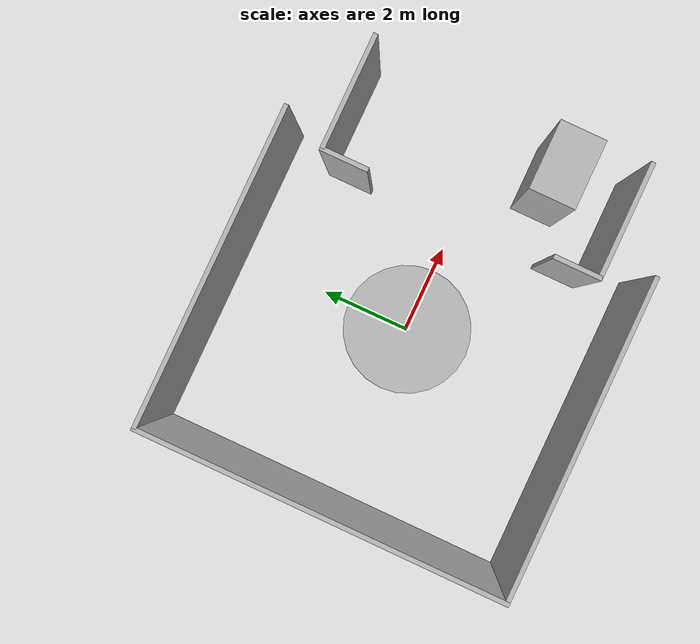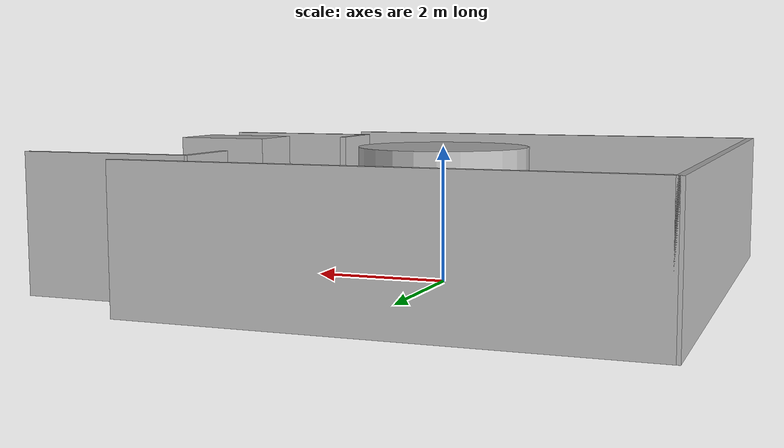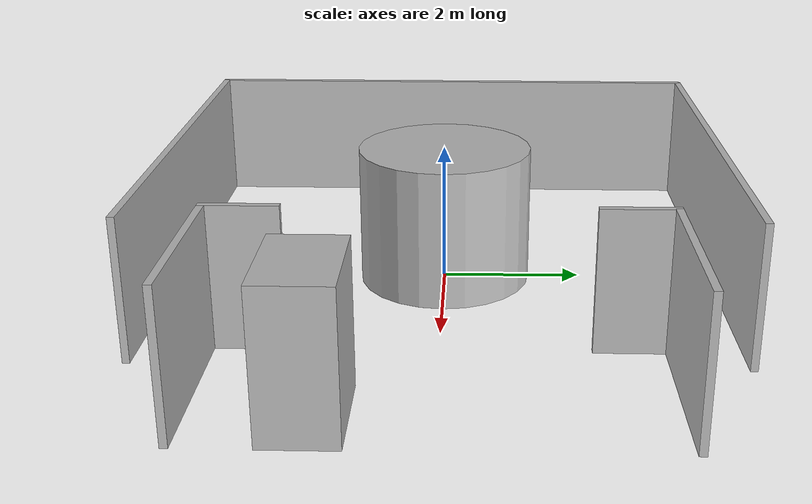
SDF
<?xml version="1.0"?>
<sdf version="1.6">
  <model name="icy_interior">

    <static>true</static>

    <!-- Wall A. -->
    <link name="A">
      <pose>3.75 3 1 0 0 0</pose>
      <must_be_base_link>true</must_be_base_link>
      <collision name="a_col">
        <geometry>
          <box>
            <size>2.5 0.1 2</size>
          </box>
        </geometry>
      </collision>
      <visual name="a_vis">
        <geometry>
          <box>
            <size>2.5 0.1 2</size>
          </box>
        </geometry>
      </visual>
    </link>

    <!-- Wall B. -->
    <link name="B">
      <pose>3.75 -3 1 0 0 0</pose>
      <must_be_base_link>true</must_be_base_link>
      <collision name="b_col">
        <geometry>
          <box>
            <size>2.5 0.1 2</size>
          </box>
        </geometry>
      </collision>
      <visual name="b_vis">
        <geometry>
          <box>
            <size>2.5 0.1 2</size>
          </box>
        </geometry>
      </visual>
    </link>

    <!-- Wall C. (y is not exactly 2.5 to offset for the wall width) -->
    <link name="C">
      <pose>2.5 2.525 1 0 0 0</pose>
      <must_be_base_link>true</must_be_base_link>
      <collision name="c_col">
        <geometry>
          <box>
            <size>0.1 1.05 2</size>
          </box>
        </geometry>
      </collision>
      <visual name="c_vis">
        <geometry>
          <box>
            <size>0.1 1.05 2</size>
          </box>
        </geometry>
      </visual>
    </link>

    <!-- Wall D. (y is not exactly 2.5 to offset for the wall width) -->
    <link name="D">
      <pose>2.5 -2.525 1 0 0 0</pose>
      <must_be_base_link>true</must_be_base_link>
      <collision name="d_col">
        <geometry>
          <box>
            <size>0.1 1.05 2</size>
          </box>
        </geometry>
      </collision>
      <visual name="d_vis">
        <geometry>
          <box>
            <size>0.1 1.05 2</size>
          </box>
        </geometry>
      </visual>
    </link>

    <!-- Cylinder E. -->
    <link name="E">
      <pose>0 0 1 0 0 0</pose>
      <must_be_base_link>true</must_be_base_link>
      <collision name="e_col">
        <geometry>
          <cylinder>
            <radius>1.25</radius>
            <length>2</length>
          </cylinder>
        </geometry>
      </collision>
      <visual name="e_vis">
        <geometry>
          <cylinder>
            <radius>1.25</radius>
            <length>2</length>
          </cylinder>
        </geometry>
      </visual>
    </link>

    <!-- Wall F. -->
    <link name="F">
      <pose>-0.5 4 1 0 0 0</pose>
      <must_be_base_link>true</must_be_base_link>
      <collision name="f_col">
        <geometry>
          <box>
            <size>7 0.1 2</size>
          </box>
        </geometry>
      </collision>
      <visual name="f_vis">
        <geometry>
          <box>
            <size>7 0.1 2</size>
          </box>
        </geometry>
      </visual>
    </link>

    <!-- Wall G. -->
    <link name="G">
      <pose>-0.5 -4 1 0 0 0</pose>
      <must_be_base_link>true</must_be_base_link>
      <collision name="f_col">
        <geometry>
          <box>
            <size>7 0.1 2</size>
          </box>
        </geometry>
      </collision>
      <visual name="f_vis">
        <geometry>
          <box>
            <size>7 0.1 2</size>
          </box>
        </geometry>
      </visual>
    </link>

    <!-- Wall H. -->
    <link name="H">
      <pose>-4 0 1 0 0 0</pose>
      <must_be_base_link>true</must_be_base_link>
      <collision name="f_col">
        <geometry>
          <box>
            <size>0.1 8.1 2</size>
          </box>
        </geometry>
      </collision>
      <visual name="f_vis">
        <geometry>
          <box>
            <size>0.1 8.1 2</size>
          </box>
        </geometry>
      </visual>
    </link>

    <!-- Block I. -->
    <link name="I">
      <pose>4.25 -1.5 1 0 0 0</pose>
      <must_be_base_link>true</must_be_base_link>
      <collision name="i_col">
        <geometry>
          <box>
            <size>1.5 1 2</size>
          </box>
        </geometry>
      </collision>
      <visual name="i_vis">
        <geometry>
          <box>
            <size>1.5 1 2</size>
          </box>
        </geometry>
      </visual>
    </link>

  </model>
</sdf>
